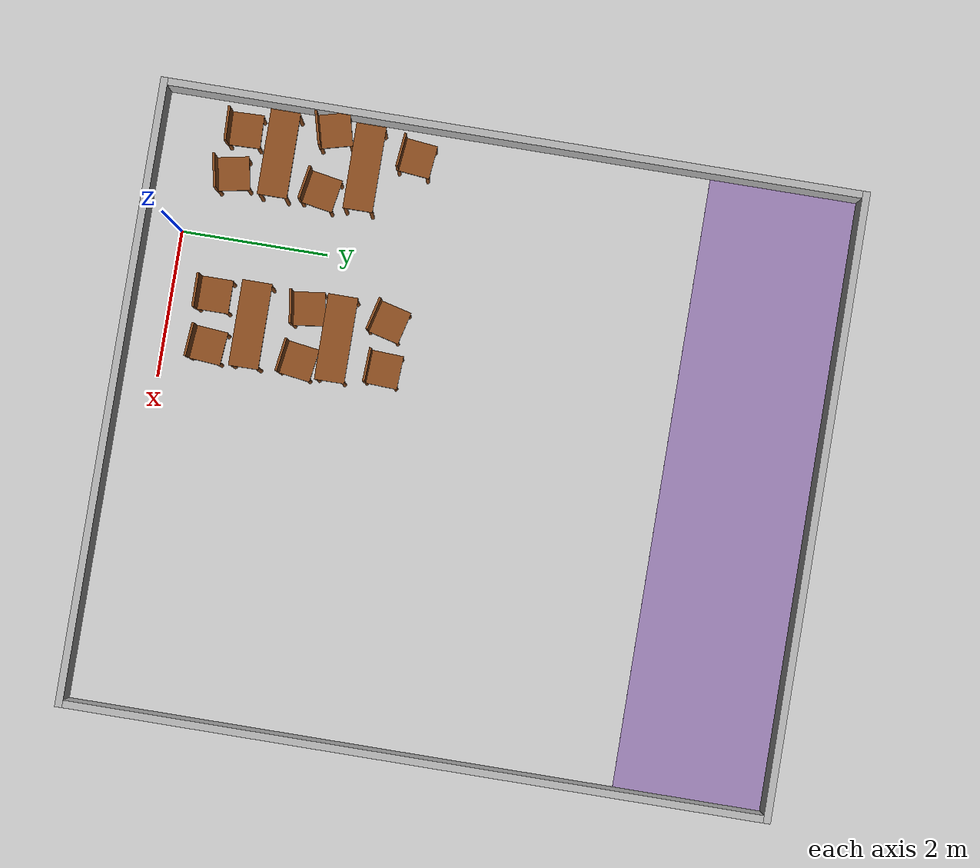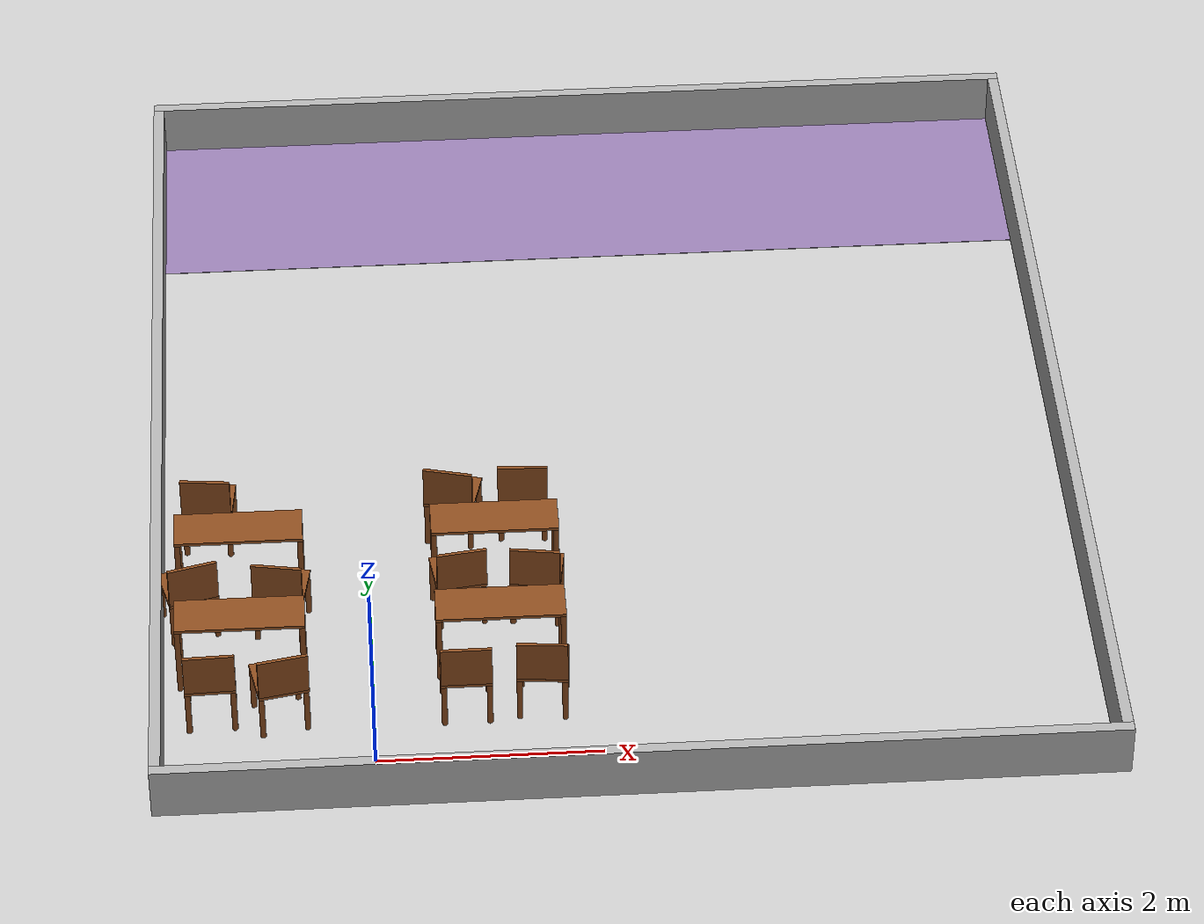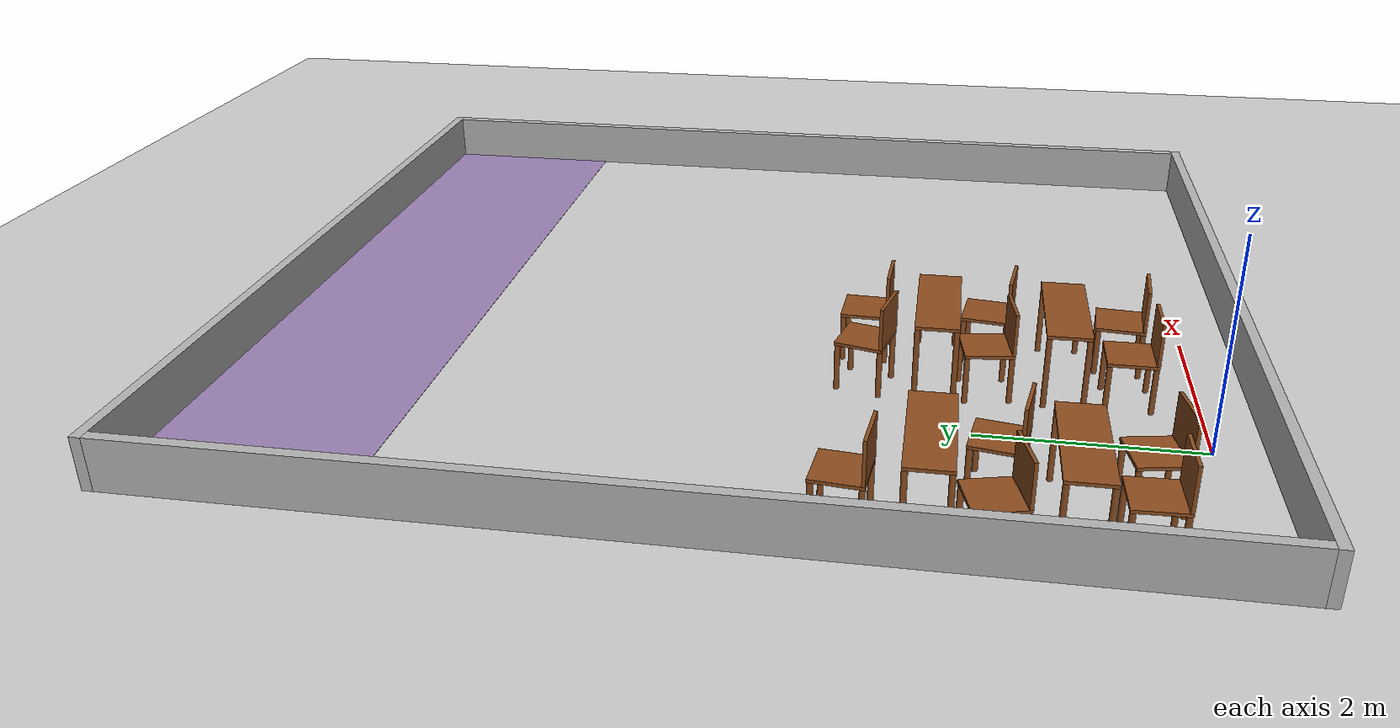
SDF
<sdf version="1.6">
 <world name="lecture_hall_real">
  <include><uri>model://ground_plane</uri></include>
  <include><uri>model://sun</uri></include>
  <model name="walls">
   <static>true</static>
   <link name="link">
    <collision name="c_s">
     <pose>2.300 -0.500 0.250 0 0 0</pose>
     <geometry><box><size>8.500 0.100 0.500</size></box></geometry>
    </collision>
    <visual name="v_s">
     <pose>2.300 -0.500 0.250 0 0 0</pose>
     <geometry><box><size>8.500 0.100 0.500</size></box></geometry>
     <material><ambient>0.6 0.6 0.6 1</ambient><diffuse>0.7 0.7 0.7 1</diffuse></material>
    </visual>
    <collision name="c_n">
     <pose>2.300 9.000 0.250 0 0 0</pose>
     <geometry><box><size>8.500 0.100 0.500</size></box></geometry>
    </collision>
    <visual name="v_n">
     <pose>2.300 9.000 0.250 0 0 0</pose>
     <geometry><box><size>8.500 0.100 0.500</size></box></geometry>
     <material><ambient>0.6 0.6 0.6 1</ambient><diffuse>0.7 0.7 0.7 1</diffuse></material>
    </visual>
    <collision name="c_w">
     <pose>-1.900 4.250 0.250 0 0 0</pose>
     <geometry><box><size>0.100 9.400 0.500</size></box></geometry>
    </collision>
    <visual name="v_w">
     <pose>-1.900 4.250 0.250 0 0 0</pose>
     <geometry><box><size>0.100 9.400 0.500</size></box></geometry>
     <material><ambient>0.6 0.6 0.6 1</ambient><diffuse>0.7 0.7 0.7 1</diffuse></material>
    </visual>
    <collision name="c_e">
     <pose>6.500 4.250 0.250 0 0 0</pose>
     <geometry><box><size>0.100 9.400 0.500</size></box></geometry>
    </collision>
    <visual name="v_e">
     <pose>6.500 4.250 0.250 0 0 0</pose>
     <geometry><box><size>0.100 9.400 0.500</size></box></geometry>
     <material><ambient>0.6 0.6 0.6 1</ambient><diffuse>0.7 0.7 0.7 1</diffuse></material>
    </visual>
    <visual name="v_stage">
     <pose>2.300 7.950 0.002 0 0 0</pose>
     <geometry><box><size>8.300 2.000 0.004</size></box></geometry>
     <material><ambient>0.5 0.4 0.6 1</ambient><diffuse>0.6 0.5 0.7 1</diffuse></material>
    </visual>
   </link>
  </model>
  <model name="chair_3_1_1">
   <static>true</static>
   <pose>-1.421 3.006 0 0 0 -0.103</pose>
   <link name="link">
    <collision name="c_leg0">
     <pose>-0.200 -0.200 0.225 0 0 0</pose>
     <geometry><cylinder><radius>0.025</radius><length>0.450</length></cylinder></geometry>
    </collision>
    <visual name="v_leg0">
     <pose>-0.200 -0.200 0.225 0 0 0</pose>
     <geometry><cylinder><radius>0.025</radius><length>0.450</length></cylinder></geometry>
     <material><ambient>0.45 0.25 0.1 1</ambient><diffuse>0.55 0.3 0.12 1</diffuse></material>
    </visual>
    <collision name="c_leg1">
     <pose>-0.200 0.200 0.225 0 0 0</pose>
     <geometry><cylinder><radius>0.025</radius><length>0.450</length></cylinder></geometry>
    </collision>
    <visual name="v_leg1">
     <pose>-0.200 0.200 0.225 0 0 0</pose>
     <geometry><cylinder><radius>0.025</radius><length>0.450</length></cylinder></geometry>
     <material><ambient>0.45 0.25 0.1 1</ambient><diffuse>0.55 0.3 0.12 1</diffuse></material>
    </visual>
    <collision name="c_leg2">
     <pose>0.200 -0.200 0.225 0 0 0</pose>
     <geometry><cylinder><radius>0.025</radius><length>0.450</length></cylinder></geometry>
    </collision>
    <visual name="v_leg2">
     <pose>0.200 -0.200 0.225 0 0 0</pose>
     <geometry><cylinder><radius>0.025</radius><length>0.450</length></cylinder></geometry>
     <material><ambient>0.45 0.25 0.1 1</ambient><diffuse>0.55 0.3 0.12 1</diffuse></material>
    </visual>
    <collision name="c_leg3">
     <pose>0.200 0.200 0.225 0 0 0</pose>
     <geometry><cylinder><radius>0.025</radius><length>0.450</length></cylinder></geometry>
    </collision>
    <visual name="v_leg3">
     <pose>0.200 0.200 0.225 0 0 0</pose>
     <geometry><cylinder><radius>0.025</radius><length>0.450</length></cylinder></geometry>
     <material><ambient>0.45 0.25 0.1 1</ambient><diffuse>0.55 0.3 0.12 1</diffuse></material>
    </visual>
    <collision name="c_seat">
     <pose>0.000 0.000 0.465 0 0 0</pose>
     <geometry><box><size>0.450 0.450 0.030</size></box></geometry>
    </collision>
    <visual name="v_seat">
     <pose>0.000 0.000 0.465 0 0 0</pose>
     <geometry><box><size>0.450 0.450 0.030</size></box></geometry>
     <material><ambient>0.45 0.25 0.1 1</ambient><diffuse>0.55 0.3 0.12 1</diffuse></material>
    </visual>
    <collision name="c_back">
     <pose>0.000 -0.210 0.680 0 0 0</pose>
     <geometry><box><size>0.450 0.030 0.400</size></box></geometry>
    </collision>
    <visual name="v_back">
     <pose>0.000 -0.210 0.680 0 0 0</pose>
     <geometry><box><size>0.450 0.030 0.400</size></box></geometry>
     <material><ambient>0.45 0.25 0.1 1</ambient><diffuse>0.55 0.3 0.12 1</diffuse></material>
    </visual>
   </link>
  </model>
  <model name="chair_3_2_1">
   <static>true</static>
   <pose>0.801 2.993 0 0 0 -0.244</pose>
   <link name="link">
    <collision name="c_leg0">
     <pose>-0.200 -0.200 0.225 0 0 0</pose>
     <geometry><cylinder><radius>0.025</radius><length>0.450</length></cylinder></geometry>
    </collision>
    <visual name="v_leg0">
     <pose>-0.200 -0.200 0.225 0 0 0</pose>
     <geometry><cylinder><radius>0.025</radius><length>0.450</length></cylinder></geometry>
     <material><ambient>0.45 0.25 0.1 1</ambient><diffuse>0.55 0.3 0.12 1</diffuse></material>
    </visual>
    <collision name="c_leg1">
     <pose>-0.200 0.200 0.225 0 0 0</pose>
     <geometry><cylinder><radius>0.025</radius><length>0.450</length></cylinder></geometry>
    </collision>
    <visual name="v_leg1">
     <pose>-0.200 0.200 0.225 0 0 0</pose>
     <geometry><cylinder><radius>0.025</radius><length>0.450</length></cylinder></geometry>
     <material><ambient>0.45 0.25 0.1 1</ambient><diffuse>0.55 0.3 0.12 1</diffuse></material>
    </visual>
    <collision name="c_leg2">
     <pose>0.200 -0.200 0.225 0 0 0</pose>
     <geometry><cylinder><radius>0.025</radius><length>0.450</length></cylinder></geometry>
    </collision>
    <visual name="v_leg2">
     <pose>0.200 -0.200 0.225 0 0 0</pose>
     <geometry><cylinder><radius>0.025</radius><length>0.450</length></cylinder></geometry>
     <material><ambient>0.45 0.25 0.1 1</ambient><diffuse>0.55 0.3 0.12 1</diffuse></material>
    </visual>
    <collision name="c_leg3">
     <pose>0.200 0.200 0.225 0 0 0</pose>
     <geometry><cylinder><radius>0.025</radius><length>0.450</length></cylinder></geometry>
    </collision>
    <visual name="v_leg3">
     <pose>0.200 0.200 0.225 0 0 0</pose>
     <geometry><cylinder><radius>0.025</radius><length>0.450</length></cylinder></geometry>
     <material><ambient>0.45 0.25 0.1 1</ambient><diffuse>0.55 0.3 0.12 1</diffuse></material>
    </visual>
    <collision name="c_seat">
     <pose>0.000 0.000 0.465 0 0 0</pose>
     <geometry><box><size>0.450 0.450 0.030</size></box></geometry>
    </collision>
    <visual name="v_seat">
     <pose>0.000 0.000 0.465 0 0 0</pose>
     <geometry><box><size>0.450 0.450 0.030</size></box></geometry>
     <material><ambient>0.45 0.25 0.1 1</ambient><diffuse>0.55 0.3 0.12 1</diffuse></material>
    </visual>
    <collision name="c_back">
     <pose>0.000 -0.210 0.680 0 0 0</pose>
     <geometry><box><size>0.450 0.030 0.400</size></box></geometry>
    </collision>
    <visual name="v_back">
     <pose>0.000 -0.210 0.680 0 0 0</pose>
     <geometry><box><size>0.450 0.030 0.400</size></box></geometry>
     <material><ambient>0.45 0.25 0.1 1</ambient><diffuse>0.55 0.3 0.12 1</diffuse></material>
    </visual>
   </link>
  </model>
  <model name="chair_3_2_2">
   <static>true</static>
   <pose>1.438 3.025 0 0 0 -0.045</pose>
   <link name="link">
    <collision name="c_leg0">
     <pose>-0.200 -0.200 0.225 0 0 0</pose>
     <geometry><cylinder><radius>0.025</radius><length>0.450</length></cylinder></geometry>
    </collision>
    <visual name="v_leg0">
     <pose>-0.200 -0.200 0.225 0 0 0</pose>
     <geometry><cylinder><radius>0.025</radius><length>0.450</length></cylinder></geometry>
     <material><ambient>0.45 0.25 0.1 1</ambient><diffuse>0.55 0.3 0.12 1</diffuse></material>
    </visual>
    <collision name="c_leg1">
     <pose>-0.200 0.200 0.225 0 0 0</pose>
     <geometry><cylinder><radius>0.025</radius><length>0.450</length></cylinder></geometry>
    </collision>
    <visual name="v_leg1">
     <pose>-0.200 0.200 0.225 0 0 0</pose>
     <geometry><cylinder><radius>0.025</radius><length>0.450</length></cylinder></geometry>
     <material><ambient>0.45 0.25 0.1 1</ambient><diffuse>0.55 0.3 0.12 1</diffuse></material>
    </visual>
    <collision name="c_leg2">
     <pose>0.200 -0.200 0.225 0 0 0</pose>
     <geometry><cylinder><radius>0.025</radius><length>0.450</length></cylinder></geometry>
    </collision>
    <visual name="v_leg2">
     <pose>0.200 -0.200 0.225 0 0 0</pose>
     <geometry><cylinder><radius>0.025</radius><length>0.450</length></cylinder></geometry>
     <material><ambient>0.45 0.25 0.1 1</ambient><diffuse>0.55 0.3 0.12 1</diffuse></material>
    </visual>
    <collision name="c_leg3">
     <pose>0.200 0.200 0.225 0 0 0</pose>
     <geometry><cylinder><radius>0.025</radius><length>0.450</length></cylinder></geometry>
    </collision>
    <visual name="v_leg3">
     <pose>0.200 0.200 0.225 0 0 0</pose>
     <geometry><cylinder><radius>0.025</radius><length>0.450</length></cylinder></geometry>
     <material><ambient>0.45 0.25 0.1 1</ambient><diffuse>0.55 0.3 0.12 1</diffuse></material>
    </visual>
    <collision name="c_seat">
     <pose>0.000 0.000 0.465 0 0 0</pose>
     <geometry><box><size>0.450 0.450 0.030</size></box></geometry>
    </collision>
    <visual name="v_seat">
     <pose>0.000 0.000 0.465 0 0 0</pose>
     <geometry><box><size>0.450 0.450 0.030</size></box></geometry>
     <material><ambient>0.45 0.25 0.1 1</ambient><diffuse>0.55 0.3 0.12 1</diffuse></material>
    </visual>
    <collision name="c_back">
     <pose>0.000 -0.210 0.680 0 0 0</pose>
     <geometry><box><size>0.450 0.030 0.400</size></box></geometry>
    </collision>
    <visual name="v_back">
     <pose>0.000 -0.210 0.680 0 0 0</pose>
     <geometry><box><size>0.450 0.030 0.400</size></box></geometry>
     <material><ambient>0.45 0.25 0.1 1</ambient><diffuse>0.55 0.3 0.12 1</diffuse></material>
    </visual>
   </link>
  </model>
  <model name="desk_4_1">
   <static>true</static>
   <pose>-1.150 2.350 0 0 0 0</pose>
   <link name="link">
    <collision name="c_leg0">
     <pose>-0.550 -0.175 0.345 0 0 0</pose>
     <geometry><cylinder><radius>0.025</radius><length>0.690</length></cylinder></geometry>
    </collision>
    <visual name="v_leg0">
     <pose>-0.550 -0.175 0.345 0 0 0</pose>
     <geometry><cylinder><radius>0.025</radius><length>0.690</length></cylinder></geometry>
     <material><ambient>0.45 0.25 0.1 1</ambient><diffuse>0.55 0.3 0.12 1</diffuse></material>
    </visual>
    <collision name="c_leg1">
     <pose>-0.550 0.175 0.345 0 0 0</pose>
     <geometry><cylinder><radius>0.025</radius><length>0.690</length></cylinder></geometry>
    </collision>
    <visual name="v_leg1">
     <pose>-0.550 0.175 0.345 0 0 0</pose>
     <geometry><cylinder><radius>0.025</radius><length>0.690</length></cylinder></geometry>
     <material><ambient>0.45 0.25 0.1 1</ambient><diffuse>0.55 0.3 0.12 1</diffuse></material>
    </visual>
    <collision name="c_leg2">
     <pose>0.550 -0.175 0.345 0 0 0</pose>
     <geometry><cylinder><radius>0.025</radius><length>0.690</length></cylinder></geometry>
    </collision>
    <visual name="v_leg2">
     <pose>0.550 -0.175 0.345 0 0 0</pose>
     <geometry><cylinder><radius>0.025</radius><length>0.690</length></cylinder></geometry>
     <material><ambient>0.45 0.25 0.1 1</ambient><diffuse>0.55 0.3 0.12 1</diffuse></material>
    </visual>
    <collision name="c_leg3">
     <pose>0.550 0.175 0.345 0 0 0</pose>
     <geometry><cylinder><radius>0.025</radius><length>0.690</length></cylinder></geometry>
    </collision>
    <visual name="v_leg3">
     <pose>0.550 0.175 0.345 0 0 0</pose>
     <geometry><cylinder><radius>0.025</radius><length>0.690</length></cylinder></geometry>
     <material><ambient>0.45 0.25 0.1 1</ambient><diffuse>0.55 0.3 0.12 1</diffuse></material>
    </visual>
    <collision name="c_top">
     <pose>0.000 0.000 0.705 0 0 0</pose>
     <geometry><box><size>1.150 0.400 0.030</size></box></geometry>
    </collision>
    <visual name="v_top">
     <pose>0.000 0.000 0.705 0 0 0</pose>
     <geometry><box><size>1.150 0.400 0.030</size></box></geometry>
     <material><ambient>0.45 0.25 0.1 1</ambient><diffuse>0.55 0.3 0.12 1</diffuse></material>
    </visual>
   </link>
  </model>
  <model name="chair_4_1_1">
   <static>true</static>
   <pose>-1.610 1.861 0 0 0 0.253</pose>
   <link name="link">
    <collision name="c_leg0">
     <pose>-0.200 -0.200 0.225 0 0 0</pose>
     <geometry><cylinder><radius>0.025</radius><length>0.450</length></cylinder></geometry>
    </collision>
    <visual name="v_leg0">
     <pose>-0.200 -0.200 0.225 0 0 0</pose>
     <geometry><cylinder><radius>0.025</radius><length>0.450</length></cylinder></geometry>
     <material><ambient>0.45 0.25 0.1 1</ambient><diffuse>0.55 0.3 0.12 1</diffuse></material>
    </visual>
    <collision name="c_leg1">
     <pose>-0.200 0.200 0.225 0 0 0</pose>
     <geometry><cylinder><radius>0.025</radius><length>0.450</length></cylinder></geometry>
    </collision>
    <visual name="v_leg1">
     <pose>-0.200 0.200 0.225 0 0 0</pose>
     <geometry><cylinder><radius>0.025</radius><length>0.450</length></cylinder></geometry>
     <material><ambient>0.45 0.25 0.1 1</ambient><diffuse>0.55 0.3 0.12 1</diffuse></material>
    </visual>
    <collision name="c_leg2">
     <pose>0.200 -0.200 0.225 0 0 0</pose>
     <geometry><cylinder><radius>0.025</radius><length>0.450</length></cylinder></geometry>
    </collision>
    <visual name="v_leg2">
     <pose>0.200 -0.200 0.225 0 0 0</pose>
     <geometry><cylinder><radius>0.025</radius><length>0.450</length></cylinder></geometry>
     <material><ambient>0.45 0.25 0.1 1</ambient><diffuse>0.55 0.3 0.12 1</diffuse></material>
    </visual>
    <collision name="c_leg3">
     <pose>0.200 0.200 0.225 0 0 0</pose>
     <geometry><cylinder><radius>0.025</radius><length>0.450</length></cylinder></geometry>
    </collision>
    <visual name="v_leg3">
     <pose>0.200 0.200 0.225 0 0 0</pose>
     <geometry><cylinder><radius>0.025</radius><length>0.450</length></cylinder></geometry>
     <material><ambient>0.45 0.25 0.1 1</ambient><diffuse>0.55 0.3 0.12 1</diffuse></material>
    </visual>
    <collision name="c_seat">
     <pose>0.000 0.000 0.465 0 0 0</pose>
     <geometry><box><size>0.450 0.450 0.030</size></box></geometry>
    </collision>
    <visual name="v_seat">
     <pose>0.000 0.000 0.465 0 0 0</pose>
     <geometry><box><size>0.450 0.450 0.030</size></box></geometry>
     <material><ambient>0.45 0.25 0.1 1</ambient><diffuse>0.55 0.3 0.12 1</diffuse></material>
    </visual>
    <collision name="c_back">
     <pose>0.000 -0.210 0.680 0 0 0</pose>
     <geometry><box><size>0.450 0.030 0.400</size></box></geometry>
    </collision>
    <visual name="v_back">
     <pose>0.000 -0.210 0.680 0 0 0</pose>
     <geometry><box><size>0.450 0.030 0.400</size></box></geometry>
     <material><ambient>0.45 0.25 0.1 1</ambient><diffuse>0.55 0.3 0.12 1</diffuse></material>
    </visual>
   </link>
  </model>
  <model name="chair_4_1_2">
   <static>true</static>
   <pose>-0.778 1.814 0 0 0 -0.173</pose>
   <link name="link">
    <collision name="c_leg0">
     <pose>-0.200 -0.200 0.225 0 0 0</pose>
     <geometry><cylinder><radius>0.025</radius><length>0.450</length></cylinder></geometry>
    </collision>
    <visual name="v_leg0">
     <pose>-0.200 -0.200 0.225 0 0 0</pose>
     <geometry><cylinder><radius>0.025</radius><length>0.450</length></cylinder></geometry>
     <material><ambient>0.45 0.25 0.1 1</ambient><diffuse>0.55 0.3 0.12 1</diffuse></material>
    </visual>
    <collision name="c_leg1">
     <pose>-0.200 0.200 0.225 0 0 0</pose>
     <geometry><cylinder><radius>0.025</radius><length>0.450</length></cylinder></geometry>
    </collision>
    <visual name="v_leg1">
     <pose>-0.200 0.200 0.225 0 0 0</pose>
     <geometry><cylinder><radius>0.025</radius><length>0.450</length></cylinder></geometry>
     <material><ambient>0.45 0.25 0.1 1</ambient><diffuse>0.55 0.3 0.12 1</diffuse></material>
    </visual>
    <collision name="c_leg2">
     <pose>0.200 -0.200 0.225 0 0 0</pose>
     <geometry><cylinder><radius>0.025</radius><length>0.450</length></cylinder></geometry>
    </collision>
    <visual name="v_leg2">
     <pose>0.200 -0.200 0.225 0 0 0</pose>
     <geometry><cylinder><radius>0.025</radius><length>0.450</length></cylinder></geometry>
     <material><ambient>0.45 0.25 0.1 1</ambient><diffuse>0.55 0.3 0.12 1</diffuse></material>
    </visual>
    <collision name="c_leg3">
     <pose>0.200 0.200 0.225 0 0 0</pose>
     <geometry><cylinder><radius>0.025</radius><length>0.450</length></cylinder></geometry>
    </collision>
    <visual name="v_leg3">
     <pose>0.200 0.200 0.225 0 0 0</pose>
     <geometry><cylinder><radius>0.025</radius><length>0.450</length></cylinder></geometry>
     <material><ambient>0.45 0.25 0.1 1</ambient><diffuse>0.55 0.3 0.12 1</diffuse></material>
    </visual>
    <collision name="c_seat">
     <pose>0.000 0.000 0.465 0 0 0</pose>
     <geometry><box><size>0.450 0.450 0.030</size></box></geometry>
    </collision>
    <visual name="v_seat">
     <pose>0.000 0.000 0.465 0 0 0</pose>
     <geometry><box><size>0.450 0.450 0.030</size></box></geometry>
     <material><ambient>0.45 0.25 0.1 1</ambient><diffuse>0.55 0.3 0.12 1</diffuse></material>
    </visual>
    <collision name="c_back">
     <pose>0.000 -0.210 0.680 0 0 0</pose>
     <geometry><box><size>0.450 0.030 0.400</size></box></geometry>
    </collision>
    <visual name="v_back">
     <pose>0.000 -0.210 0.680 0 0 0</pose>
     <geometry><box><size>0.450 0.030 0.400</size></box></geometry>
     <material><ambient>0.45 0.25 0.1 1</ambient><diffuse>0.55 0.3 0.12 1</diffuse></material>
    </visual>
   </link>
  </model>
  <model name="desk_4_2">
   <static>true</static>
   <pose>1.150 2.350 0 0 0 0</pose>
   <link name="link">
    <collision name="c_leg0">
     <pose>-0.550 -0.175 0.345 0 0 0</pose>
     <geometry><cylinder><radius>0.025</radius><length>0.690</length></cylinder></geometry>
    </collision>
    <visual name="v_leg0">
     <pose>-0.550 -0.175 0.345 0 0 0</pose>
     <geometry><cylinder><radius>0.025</radius><length>0.690</length></cylinder></geometry>
     <material><ambient>0.45 0.25 0.1 1</ambient><diffuse>0.55 0.3 0.12 1</diffuse></material>
    </visual>
    <collision name="c_leg1">
     <pose>-0.550 0.175 0.345 0 0 0</pose>
     <geometry><cylinder><radius>0.025</radius><length>0.690</length></cylinder></geometry>
    </collision>
    <visual name="v_leg1">
     <pose>-0.550 0.175 0.345 0 0 0</pose>
     <geometry><cylinder><radius>0.025</radius><length>0.690</length></cylinder></geometry>
     <material><ambient>0.45 0.25 0.1 1</ambient><diffuse>0.55 0.3 0.12 1</diffuse></material>
    </visual>
    <collision name="c_leg2">
     <pose>0.550 -0.175 0.345 0 0 0</pose>
     <geometry><cylinder><radius>0.025</radius><length>0.690</length></cylinder></geometry>
    </collision>
    <visual name="v_leg2">
     <pose>0.550 -0.175 0.345 0 0 0</pose>
     <geometry><cylinder><radius>0.025</radius><length>0.690</length></cylinder></geometry>
     <material><ambient>0.45 0.25 0.1 1</ambient><diffuse>0.55 0.3 0.12 1</diffuse></material>
    </visual>
    <collision name="c_leg3">
     <pose>0.550 0.175 0.345 0 0 0</pose>
     <geometry><cylinder><radius>0.025</radius><length>0.690</length></cylinder></geometry>
    </collision>
    <visual name="v_leg3">
     <pose>0.550 0.175 0.345 0 0 0</pose>
     <geometry><cylinder><radius>0.025</radius><length>0.690</length></cylinder></geometry>
     <material><ambient>0.45 0.25 0.1 1</ambient><diffuse>0.55 0.3 0.12 1</diffuse></material>
    </visual>
    <collision name="c_top">
     <pose>0.000 0.000 0.705 0 0 0</pose>
     <geometry><box><size>1.150 0.400 0.030</size></box></geometry>
    </collision>
    <visual name="v_top">
     <pose>0.000 0.000 0.705 0 0 0</pose>
     <geometry><box><size>1.150 0.400 0.030</size></box></geometry>
     <material><ambient>0.45 0.25 0.1 1</ambient><diffuse>0.55 0.3 0.12 1</diffuse></material>
    </visual>
   </link>
  </model>
  <model name="chair_4_2_1">
   <static>true</static>
   <pose>0.801 1.902 0 0 0 0.142</pose>
   <link name="link">
    <collision name="c_leg0">
     <pose>-0.200 -0.200 0.225 0 0 0</pose>
     <geometry><cylinder><radius>0.025</radius><length>0.450</length></cylinder></geometry>
    </collision>
    <visual name="v_leg0">
     <pose>-0.200 -0.200 0.225 0 0 0</pose>
     <geometry><cylinder><radius>0.025</radius><length>0.450</length></cylinder></geometry>
     <material><ambient>0.45 0.25 0.1 1</ambient><diffuse>0.55 0.3 0.12 1</diffuse></material>
    </visual>
    <collision name="c_leg1">
     <pose>-0.200 0.200 0.225 0 0 0</pose>
     <geometry><cylinder><radius>0.025</radius><length>0.450</length></cylinder></geometry>
    </collision>
    <visual name="v_leg1">
     <pose>-0.200 0.200 0.225 0 0 0</pose>
     <geometry><cylinder><radius>0.025</radius><length>0.450</length></cylinder></geometry>
     <material><ambient>0.45 0.25 0.1 1</ambient><diffuse>0.55 0.3 0.12 1</diffuse></material>
    </visual>
    <collision name="c_leg2">
     <pose>0.200 -0.200 0.225 0 0 0</pose>
     <geometry><cylinder><radius>0.025</radius><length>0.450</length></cylinder></geometry>
    </collision>
    <visual name="v_leg2">
     <pose>0.200 -0.200 0.225 0 0 0</pose>
     <geometry><cylinder><radius>0.025</radius><length>0.450</length></cylinder></geometry>
     <material><ambient>0.45 0.25 0.1 1</ambient><diffuse>0.55 0.3 0.12 1</diffuse></material>
    </visual>
    <collision name="c_leg3">
     <pose>0.200 0.200 0.225 0 0 0</pose>
     <geometry><cylinder><radius>0.025</radius><length>0.450</length></cylinder></geometry>
    </collision>
    <visual name="v_leg3">
     <pose>0.200 0.200 0.225 0 0 0</pose>
     <geometry><cylinder><radius>0.025</radius><length>0.450</length></cylinder></geometry>
     <material><ambient>0.45 0.25 0.1 1</ambient><diffuse>0.55 0.3 0.12 1</diffuse></material>
    </visual>
    <collision name="c_seat">
     <pose>0.000 0.000 0.465 0 0 0</pose>
     <geometry><box><size>0.450 0.450 0.030</size></box></geometry>
    </collision>
    <visual name="v_seat">
     <pose>0.000 0.000 0.465 0 0 0</pose>
     <geometry><box><size>0.450 0.450 0.030</size></box></geometry>
     <material><ambient>0.45 0.25 0.1 1</ambient><diffuse>0.55 0.3 0.12 1</diffuse></material>
    </visual>
    <collision name="c_back">
     <pose>0.000 -0.210 0.680 0 0 0</pose>
     <geometry><box><size>0.450 0.030 0.400</size></box></geometry>
    </collision>
    <visual name="v_back">
     <pose>0.000 -0.210 0.680 0 0 0</pose>
     <geometry><box><size>0.450 0.030 0.400</size></box></geometry>
     <material><ambient>0.45 0.25 0.1 1</ambient><diffuse>0.55 0.3 0.12 1</diffuse></material>
    </visual>
   </link>
  </model>
  <model name="chair_4_2_2">
   <static>true</static>
   <pose>1.510 1.884 0 0 0 -0.14</pose>
   <link name="link">
    <collision name="c_leg0">
     <pose>-0.200 -0.200 0.225 0 0 0</pose>
     <geometry><cylinder><radius>0.025</radius><length>0.450</length></cylinder></geometry>
    </collision>
    <visual name="v_leg0">
     <pose>-0.200 -0.200 0.225 0 0 0</pose>
     <geometry><cylinder><radius>0.025</radius><length>0.450</length></cylinder></geometry>
     <material><ambient>0.45 0.25 0.1 1</ambient><diffuse>0.55 0.3 0.12 1</diffuse></material>
    </visual>
    <collision name="c_leg1">
     <pose>-0.200 0.200 0.225 0 0 0</pose>
     <geometry><cylinder><radius>0.025</radius><length>0.450</length></cylinder></geometry>
    </collision>
    <visual name="v_leg1">
     <pose>-0.200 0.200 0.225 0 0 0</pose>
     <geometry><cylinder><radius>0.025</radius><length>0.450</length></cylinder></geometry>
     <material><ambient>0.45 0.25 0.1 1</ambient><diffuse>0.55 0.3 0.12 1</diffuse></material>
    </visual>
    <collision name="c_leg2">
     <pose>0.200 -0.200 0.225 0 0 0</pose>
     <geometry><cylinder><radius>0.025</radius><length>0.450</length></cylinder></geometry>
    </collision>
    <visual name="v_leg2">
     <pose>0.200 -0.200 0.225 0 0 0</pose>
     <geometry><cylinder><radius>0.025</radius><length>0.450</length></cylinder></geometry>
     <material><ambient>0.45 0.25 0.1 1</ambient><diffuse>0.55 0.3 0.12 1</diffuse></material>
    </visual>
    <collision name="c_leg3">
     <pose>0.200 0.200 0.225 0 0 0</pose>
     <geometry><cylinder><radius>0.025</radius><length>0.450</length></cylinder></geometry>
    </collision>
    <visual name="v_leg3">
     <pose>0.200 0.200 0.225 0 0 0</pose>
     <geometry><cylinder><radius>0.025</radius><length>0.450</length></cylinder></geometry>
     <material><ambient>0.45 0.25 0.1 1</ambient><diffuse>0.55 0.3 0.12 1</diffuse></material>
    </visual>
    <collision name="c_seat">
     <pose>0.000 0.000 0.465 0 0 0</pose>
     <geometry><box><size>0.450 0.450 0.030</size></box></geometry>
    </collision>
    <visual name="v_seat">
     <pose>0.000 0.000 0.465 0 0 0</pose>
     <geometry><box><size>0.450 0.450 0.030</size></box></geometry>
     <material><ambient>0.45 0.25 0.1 1</ambient><diffuse>0.55 0.3 0.12 1</diffuse></material>
    </visual>
    <collision name="c_back">
     <pose>0.000 -0.210 0.680 0 0 0</pose>
     <geometry><box><size>0.450 0.030 0.400</size></box></geometry>
    </collision>
    <visual name="v_back">
     <pose>0.000 -0.210 0.680 0 0 0</pose>
     <geometry><box><size>0.450 0.030 0.400</size></box></geometry>
     <material><ambient>0.45 0.25 0.1 1</ambient><diffuse>0.55 0.3 0.12 1</diffuse></material>
    </visual>
   </link>
  </model>
  <model name="desk_5_1">
   <static>true</static>
   <pose>-1.150 1.200 0 0 0 0</pose>
   <link name="link">
    <collision name="c_leg0">
     <pose>-0.550 -0.175 0.345 0 0 0</pose>
     <geometry><cylinder><radius>0.025</radius><length>0.690</length></cylinder></geometry>
    </collision>
    <visual name="v_leg0">
     <pose>-0.550 -0.175 0.345 0 0 0</pose>
     <geometry><cylinder><radius>0.025</radius><length>0.690</length></cylinder></geometry>
     <material><ambient>0.45 0.25 0.1 1</ambient><diffuse>0.55 0.3 0.12 1</diffuse></material>
    </visual>
    <collision name="c_leg1">
     <pose>-0.550 0.175 0.345 0 0 0</pose>
     <geometry><cylinder><radius>0.025</radius><length>0.690</length></cylinder></geometry>
    </collision>
    <visual name="v_leg1">
     <pose>-0.550 0.175 0.345 0 0 0</pose>
     <geometry><cylinder><radius>0.025</radius><length>0.690</length></cylinder></geometry>
     <material><ambient>0.45 0.25 0.1 1</ambient><diffuse>0.55 0.3 0.12 1</diffuse></material>
    </visual>
    <collision name="c_leg2">
     <pose>0.550 -0.175 0.345 0 0 0</pose>
     <geometry><cylinder><radius>0.025</radius><length>0.690</length></cylinder></geometry>
    </collision>
    <visual name="v_leg2">
     <pose>0.550 -0.175 0.345 0 0 0</pose>
     <geometry><cylinder><radius>0.025</radius><length>0.690</length></cylinder></geometry>
     <material><ambient>0.45 0.25 0.1 1</ambient><diffuse>0.55 0.3 0.12 1</diffuse></material>
    </visual>
    <collision name="c_leg3">
     <pose>0.550 0.175 0.345 0 0 0</pose>
     <geometry><cylinder><radius>0.025</radius><length>0.690</length></cylinder></geometry>
    </collision>
    <visual name="v_leg3">
     <pose>0.550 0.175 0.345 0 0 0</pose>
     <geometry><cylinder><radius>0.025</radius><length>0.690</length></cylinder></geometry>
     <material><ambient>0.45 0.25 0.1 1</ambient><diffuse>0.55 0.3 0.12 1</diffuse></material>
    </visual>
    <collision name="c_top">
     <pose>0.000 0.000 0.705 0 0 0</pose>
     <geometry><box><size>1.150 0.400 0.030</size></box></geometry>
    </collision>
    <visual name="v_top">
     <pose>0.000 0.000 0.705 0 0 0</pose>
     <geometry><box><size>1.150 0.400 0.030</size></box></geometry>
     <material><ambient>0.45 0.25 0.1 1</ambient><diffuse>0.55 0.3 0.12 1</diffuse></material>
    </visual>
   </link>
  </model>
  <model name="chair_5_1_1">
   <static>true</static>
   <pose>-1.426 0.683 0 0 0 0.032</pose>
   <link name="link">
    <collision name="c_leg0">
     <pose>-0.200 -0.200 0.225 0 0 0</pose>
     <geometry><cylinder><radius>0.025</radius><length>0.450</length></cylinder></geometry>
    </collision>
    <visual name="v_leg0">
     <pose>-0.200 -0.200 0.225 0 0 0</pose>
     <geometry><cylinder><radius>0.025</radius><length>0.450</length></cylinder></geometry>
     <material><ambient>0.45 0.25 0.1 1</ambient><diffuse>0.55 0.3 0.12 1</diffuse></material>
    </visual>
    <collision name="c_leg1">
     <pose>-0.200 0.200 0.225 0 0 0</pose>
     <geometry><cylinder><radius>0.025</radius><length>0.450</length></cylinder></geometry>
    </collision>
    <visual name="v_leg1">
     <pose>-0.200 0.200 0.225 0 0 0</pose>
     <geometry><cylinder><radius>0.025</radius><length>0.450</length></cylinder></geometry>
     <material><ambient>0.45 0.25 0.1 1</ambient><diffuse>0.55 0.3 0.12 1</diffuse></material>
    </visual>
    <collision name="c_leg2">
     <pose>0.200 -0.200 0.225 0 0 0</pose>
     <geometry><cylinder><radius>0.025</radius><length>0.450</length></cylinder></geometry>
    </collision>
    <visual name="v_leg2">
     <pose>0.200 -0.200 0.225 0 0 0</pose>
     <geometry><cylinder><radius>0.025</radius><length>0.450</length></cylinder></geometry>
     <material><ambient>0.45 0.25 0.1 1</ambient><diffuse>0.55 0.3 0.12 1</diffuse></material>
    </visual>
    <collision name="c_leg3">
     <pose>0.200 0.200 0.225 0 0 0</pose>
     <geometry><cylinder><radius>0.025</radius><length>0.450</length></cylinder></geometry>
    </collision>
    <visual name="v_leg3">
     <pose>0.200 0.200 0.225 0 0 0</pose>
     <geometry><cylinder><radius>0.025</radius><length>0.450</length></cylinder></geometry>
     <material><ambient>0.45 0.25 0.1 1</ambient><diffuse>0.55 0.3 0.12 1</diffuse></material>
    </visual>
    <collision name="c_seat">
     <pose>0.000 0.000 0.465 0 0 0</pose>
     <geometry><box><size>0.450 0.450 0.030</size></box></geometry>
    </collision>
    <visual name="v_seat">
     <pose>0.000 0.000 0.465 0 0 0</pose>
     <geometry><box><size>0.450 0.450 0.030</size></box></geometry>
     <material><ambient>0.45 0.25 0.1 1</ambient><diffuse>0.55 0.3 0.12 1</diffuse></material>
    </visual>
    <collision name="c_back">
     <pose>0.000 -0.210 0.680 0 0 0</pose>
     <geometry><box><size>0.450 0.030 0.400</size></box></geometry>
    </collision>
    <visual name="v_back">
     <pose>0.000 -0.210 0.680 0 0 0</pose>
     <geometry><box><size>0.450 0.030 0.400</size></box></geometry>
     <material><ambient>0.45 0.25 0.1 1</ambient><diffuse>0.55 0.3 0.12 1</diffuse></material>
    </visual>
   </link>
  </model>
  <model name="chair_5_1_2">
   <static>true</static>
   <pose>-0.818 0.613 0 0 0 0.194</pose>
   <link name="link">
    <collision name="c_leg0">
     <pose>-0.200 -0.200 0.225 0 0 0</pose>
     <geometry><cylinder><radius>0.025</radius><length>0.450</length></cylinder></geometry>
    </collision>
    <visual name="v_leg0">
     <pose>-0.200 -0.200 0.225 0 0 0</pose>
     <geometry><cylinder><radius>0.025</radius><length>0.450</length></cylinder></geometry>
     <material><ambient>0.45 0.25 0.1 1</ambient><diffuse>0.55 0.3 0.12 1</diffuse></material>
    </visual>
    <collision name="c_leg1">
     <pose>-0.200 0.200 0.225 0 0 0</pose>
     <geometry><cylinder><radius>0.025</radius><length>0.450</length></cylinder></geometry>
    </collision>
    <visual name="v_leg1">
     <pose>-0.200 0.200 0.225 0 0 0</pose>
     <geometry><cylinder><radius>0.025</radius><length>0.450</length></cylinder></geometry>
     <material><ambient>0.45 0.25 0.1 1</ambient><diffuse>0.55 0.3 0.12 1</diffuse></material>
    </visual>
    <collision name="c_leg2">
     <pose>0.200 -0.200 0.225 0 0 0</pose>
     <geometry><cylinder><radius>0.025</radius><length>0.450</length></cylinder></geometry>
    </collision>
    <visual name="v_leg2">
     <pose>0.200 -0.200 0.225 0 0 0</pose>
     <geometry><cylinder><radius>0.025</radius><length>0.450</length></cylinder></geometry>
     <material><ambient>0.45 0.25 0.1 1</ambient><diffuse>0.55 0.3 0.12 1</diffuse></material>
    </visual>
    <collision name="c_leg3">
     <pose>0.200 0.200 0.225 0 0 0</pose>
     <geometry><cylinder><radius>0.025</radius><length>0.450</length></cylinder></geometry>
    </collision>
    <visual name="v_leg3">
     <pose>0.200 0.200 0.225 0 0 0</pose>
     <geometry><cylinder><radius>0.025</radius><length>0.450</length></cylinder></geometry>
     <material><ambient>0.45 0.25 0.1 1</ambient><diffuse>0.55 0.3 0.12 1</diffuse></material>
    </visual>
    <collision name="c_seat">
     <pose>0.000 0.000 0.465 0 0 0</pose>
     <geometry><box><size>0.450 0.450 0.030</size></box></geometry>
    </collision>
    <visual name="v_seat">
     <pose>0.000 0.000 0.465 0 0 0</pose>
     <geometry><box><size>0.450 0.450 0.030</size></box></geometry>
     <material><ambient>0.45 0.25 0.1 1</ambient><diffuse>0.55 0.3 0.12 1</diffuse></material>
    </visual>
    <collision name="c_back">
     <pose>0.000 -0.210 0.680 0 0 0</pose>
     <geometry><box><size>0.450 0.030 0.400</size></box></geometry>
    </collision>
    <visual name="v_back">
     <pose>0.000 -0.210 0.680 0 0 0</pose>
     <geometry><box><size>0.450 0.030 0.400</size></box></geometry>
     <material><ambient>0.45 0.25 0.1 1</ambient><diffuse>0.55 0.3 0.12 1</diffuse></material>
    </visual>
   </link>
  </model>
  <model name="desk_5_2">
   <static>true</static>
   <pose>1.150 1.200 0 0 0 0</pose>
   <link name="link">
    <collision name="c_leg0">
     <pose>-0.550 -0.175 0.345 0 0 0</pose>
     <geometry><cylinder><radius>0.025</radius><length>0.690</length></cylinder></geometry>
    </collision>
    <visual name="v_leg0">
     <pose>-0.550 -0.175 0.345 0 0 0</pose>
     <geometry><cylinder><radius>0.025</radius><length>0.690</length></cylinder></geometry>
     <material><ambient>0.45 0.25 0.1 1</ambient><diffuse>0.55 0.3 0.12 1</diffuse></material>
    </visual>
    <collision name="c_leg1">
     <pose>-0.550 0.175 0.345 0 0 0</pose>
     <geometry><cylinder><radius>0.025</radius><length>0.690</length></cylinder></geometry>
    </collision>
    <visual name="v_leg1">
     <pose>-0.550 0.175 0.345 0 0 0</pose>
     <geometry><cylinder><radius>0.025</radius><length>0.690</length></cylinder></geometry>
     <material><ambient>0.45 0.25 0.1 1</ambient><diffuse>0.55 0.3 0.12 1</diffuse></material>
    </visual>
    <collision name="c_leg2">
     <pose>0.550 -0.175 0.345 0 0 0</pose>
     <geometry><cylinder><radius>0.025</radius><length>0.690</length></cylinder></geometry>
    </collision>
    <visual name="v_leg2">
     <pose>0.550 -0.175 0.345 0 0 0</pose>
     <geometry><cylinder><radius>0.025</radius><length>0.690</length></cylinder></geometry>
     <material><ambient>0.45 0.25 0.1 1</ambient><diffuse>0.55 0.3 0.12 1</diffuse></material>
    </visual>
    <collision name="c_leg3">
     <pose>0.550 0.175 0.345 0 0 0</pose>
     <geometry><cylinder><radius>0.025</radius><length>0.690</length></cylinder></geometry>
    </collision>
    <visual name="v_leg3">
     <pose>0.550 0.175 0.345 0 0 0</pose>
     <geometry><cylinder><radius>0.025</radius><length>0.690</length></cylinder></geometry>
     <material><ambient>0.45 0.25 0.1 1</ambient><diffuse>0.55 0.3 0.12 1</diffuse></material>
    </visual>
    <collision name="c_top">
     <pose>0.000 0.000 0.705 0 0 0</pose>
     <geometry><box><size>1.150 0.400 0.030</size></box></geometry>
    </collision>
    <visual name="v_top">
     <pose>0.000 0.000 0.705 0 0 0</pose>
     <geometry><box><size>1.150 0.400 0.030</size></box></geometry>
     <material><ambient>0.45 0.25 0.1 1</ambient><diffuse>0.55 0.3 0.12 1</diffuse></material>
    </visual>
   </link>
  </model>
  <model name="chair_5_2_1">
   <static>true</static>
   <pose>0.817 0.635 0 0 0 0.002</pose>
   <link name="link">
    <collision name="c_leg0">
     <pose>-0.200 -0.200 0.225 0 0 0</pose>
     <geometry><cylinder><radius>0.025</radius><length>0.450</length></cylinder></geometry>
    </collision>
    <visual name="v_leg0">
     <pose>-0.200 -0.200 0.225 0 0 0</pose>
     <geometry><cylinder><radius>0.025</radius><length>0.450</length></cylinder></geometry>
     <material><ambient>0.45 0.25 0.1 1</ambient><diffuse>0.55 0.3 0.12 1</diffuse></material>
    </visual>
    <collision name="c_leg1">
     <pose>-0.200 0.200 0.225 0 0 0</pose>
     <geometry><cylinder><radius>0.025</radius><length>0.450</length></cylinder></geometry>
    </collision>
    <visual name="v_leg1">
     <pose>-0.200 0.200 0.225 0 0 0</pose>
     <geometry><cylinder><radius>0.025</radius><length>0.450</length></cylinder></geometry>
     <material><ambient>0.45 0.25 0.1 1</ambient><diffuse>0.55 0.3 0.12 1</diffuse></material>
    </visual>
    <collision name="c_leg2">
     <pose>0.200 -0.200 0.225 0 0 0</pose>
     <geometry><cylinder><radius>0.025</radius><length>0.450</length></cylinder></geometry>
    </collision>
    <visual name="v_leg2">
     <pose>0.200 -0.200 0.225 0 0 0</pose>
     <geometry><cylinder><radius>0.025</radius><length>0.450</length></cylinder></geometry>
     <material><ambient>0.45 0.25 0.1 1</ambient><diffuse>0.55 0.3 0.12 1</diffuse></material>
    </visual>
    <collision name="c_leg3">
     <pose>0.200 0.200 0.225 0 0 0</pose>
     <geometry><cylinder><radius>0.025</radius><length>0.450</length></cylinder></geometry>
    </collision>
    <visual name="v_leg3">
     <pose>0.200 0.200 0.225 0 0 0</pose>
     <geometry><cylinder><radius>0.025</radius><length>0.450</length></cylinder></geometry>
     <material><ambient>0.45 0.25 0.1 1</ambient><diffuse>0.55 0.3 0.12 1</diffuse></material>
    </visual>
    <collision name="c_seat">
     <pose>0.000 0.000 0.465 0 0 0</pose>
     <geometry><box><size>0.450 0.450 0.030</size></box></geometry>
    </collision>
    <visual name="v_seat">
     <pose>0.000 0.000 0.465 0 0 0</pose>
     <geometry><box><size>0.450 0.450 0.030</size></box></geometry>
     <material><ambient>0.45 0.25 0.1 1</ambient><diffuse>0.55 0.3 0.12 1</diffuse></material>
    </visual>
    <collision name="c_back">
     <pose>0.000 -0.210 0.680 0 0 0</pose>
     <geometry><box><size>0.450 0.030 0.400</size></box></geometry>
    </collision>
    <visual name="v_back">
     <pose>0.000 -0.210 0.680 0 0 0</pose>
     <geometry><box><size>0.450 0.030 0.400</size></box></geometry>
     <material><ambient>0.45 0.25 0.1 1</ambient><diffuse>0.55 0.3 0.12 1</diffuse></material>
    </visual>
   </link>
  </model>
  <model name="chair_5_2_2">
   <static>true</static>
   <pose>1.496 0.659 0 0 0 -0.081</pose>
   <link name="link">
    <collision name="c_leg0">
     <pose>-0.200 -0.200 0.225 0 0 0</pose>
     <geometry><cylinder><radius>0.025</radius><length>0.450</length></cylinder></geometry>
    </collision>
    <visual name="v_leg0">
     <pose>-0.200 -0.200 0.225 0 0 0</pose>
     <geometry><cylinder><radius>0.025</radius><length>0.450</length></cylinder></geometry>
     <material><ambient>0.45 0.25 0.1 1</ambient><diffuse>0.55 0.3 0.12 1</diffuse></material>
    </visual>
    <collision name="c_leg1">
     <pose>-0.200 0.200 0.225 0 0 0</pose>
     <geometry><cylinder><radius>0.025</radius><length>0.450</length></cylinder></geometry>
    </collision>
    <visual name="v_leg1">
     <pose>-0.200 0.200 0.225 0 0 0</pose>
     <geometry><cylinder><radius>0.025</radius><length>0.450</length></cylinder></geometry>
     <material><ambient>0.45 0.25 0.1 1</ambient><diffuse>0.55 0.3 0.12 1</diffuse></material>
    </visual>
    <collision name="c_leg2">
     <pose>0.200 -0.200 0.225 0 0 0</pose>
     <geometry><cylinder><radius>0.025</radius><length>0.450</length></cylinder></geometry>
    </collision>
    <visual name="v_leg2">
     <pose>0.200 -0.200 0.225 0 0 0</pose>
     <geometry><cylinder><radius>0.025</radius><length>0.450</length></cylinder></geometry>
     <material><ambient>0.45 0.25 0.1 1</ambient><diffuse>0.55 0.3 0.12 1</diffuse></material>
    </visual>
    <collision name="c_leg3">
     <pose>0.200 0.200 0.225 0 0 0</pose>
     <geometry><cylinder><radius>0.025</radius><length>0.450</length></cylinder></geometry>
    </collision>
    <visual name="v_leg3">
     <pose>0.200 0.200 0.225 0 0 0</pose>
     <geometry><cylinder><radius>0.025</radius><length>0.450</length></cylinder></geometry>
     <material><ambient>0.45 0.25 0.1 1</ambient><diffuse>0.55 0.3 0.12 1</diffuse></material>
    </visual>
    <collision name="c_seat">
     <pose>0.000 0.000 0.465 0 0 0</pose>
     <geometry><box><size>0.450 0.450 0.030</size></box></geometry>
    </collision>
    <visual name="v_seat">
     <pose>0.000 0.000 0.465 0 0 0</pose>
     <geometry><box><size>0.450 0.450 0.030</size></box></geometry>
     <material><ambient>0.45 0.25 0.1 1</ambient><diffuse>0.55 0.3 0.12 1</diffuse></material>
    </visual>
    <collision name="c_back">
     <pose>0.000 -0.210 0.680 0 0 0</pose>
     <geometry><box><size>0.450 0.030 0.400</size></box></geometry>
    </collision>
    <visual name="v_back">
     <pose>0.000 -0.210 0.680 0 0 0</pose>
     <geometry><box><size>0.450 0.030 0.400</size></box></geometry>
     <material><ambient>0.45 0.25 0.1 1</ambient><diffuse>0.55 0.3 0.12 1</diffuse></material>
    </visual>
   </link>
  </model>
 </world>
</sdf>
